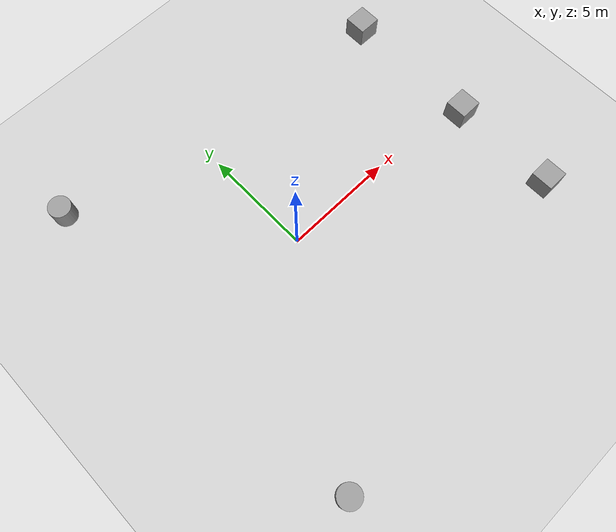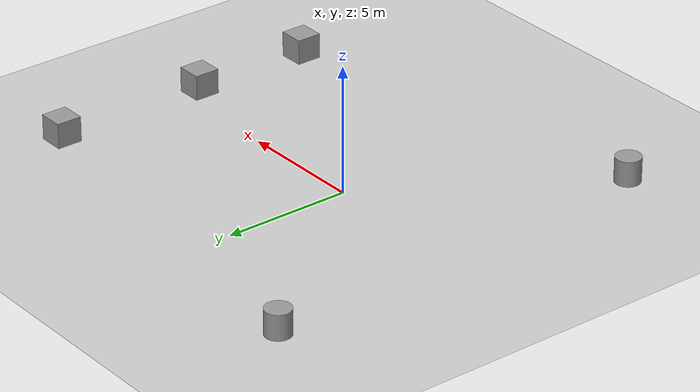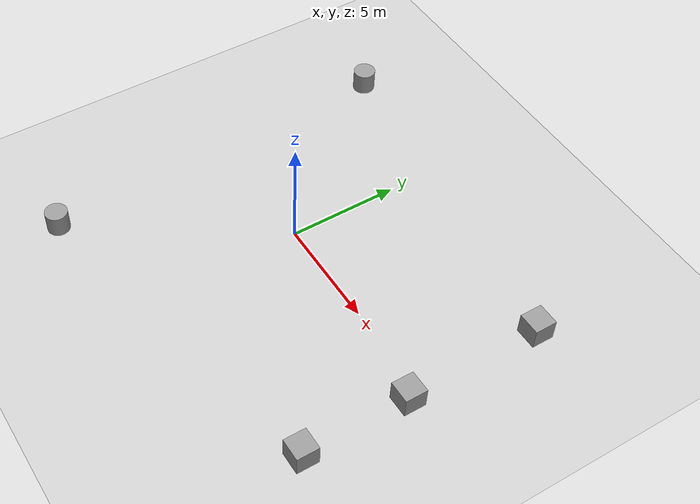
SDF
<sdf version="1.6">
 <world name="default">
  <light name="sun" type="directional">
   <pose>0 0 10 0 -0 0</pose>
   <diffuse>0.8 0.8 0.8 1</diffuse>
   <specular>0.1 0.1 0.1 1</specular>
   <attenuation>
    <range>1000</range>
    <constant>0.9</constant>
    <linear>0.01</linear>
    <quadratic>0.001</quadratic>
   </attenuation>
   <direction>-0.5 0.5 -1</direction>
  </light>
  <model name="ground_plane">
   <static>1</static>
   <link name="link">
    <collision name="collision">
     <geometry><plane><normal>0 0 1</normal><size>100 100</size></plane></geometry>
     <surface><friction><ode><mu>100</mu><mu2>50</mu2></ode></friction></surface>
    </collision>
    <visual name="visual">
     <cast_shadows>0</cast_shadows>
     <geometry><plane><normal>0 0 1</normal><size>100 100</size></plane></geometry>
     <material>
      <script><uri>file://media/materials/scripts/gazebo.material</uri><name>Gazebo/Grey</name></script>
     </material>
    </visual>
   </link>
  </model>
  <gravity>0 0 -9.8</gravity>
  <magnetic_field>6e-06 2.3e-05 -4.2e-05</magnetic_field>
  <atmosphere type="adiabatic"/>
  <physics name="default_physics" default="0" type="ode">
   <max_step_size>0.001</max_step_size>
   <real_time_factor>1</real_time_factor>
   <real_time_update_rate>1000</real_time_update_rate>
  </physics>
  <scene><ambient>0.4 0.4 0.4 1</ambient><background>0.7 0.7 0.7 1</background><shadows>1</shadows></scene>
  <spherical_coordinates>
   <surface_model>EARTH_WGS84</surface_model>
   <latitude_deg>0</latitude_deg>
   <longitude_deg>0</longitude_deg>
   <elevation>0</elevation>
   <heading_deg>0</heading_deg>
  </spherical_coordinates>
  <model name="unit_box">
   <pose>9.48877 5.53976 0.499995 1e-05 -0 0</pose>
   <link name="link">
    <inertial>
     <mass>1</mass>
     <inertia>
      <ixx>0.166667</ixx>
      <ixy>0</ixy>
      <ixz>0</ixz>
      <iyy>0.166667</iyy>
      <iyz>0</iyz>
      <izz>0.166667</izz>
     </inertia>
    </inertial>
    <collision name="collision"><geometry><box><size>1 1 1</size></box></geometry></collision>
    <visual name="visual">
     <geometry><box><size>1 1 1</size></box></geometry>
     <material>
      <script><name>Gazebo/Grey</name><uri>file://media/materials/scripts/gazebo.material</uri></script>
     </material>
    </visual>
   </link>
  </model>
  <model name="unit_box_0">
   <pose>9.48198 -0.657965 0.499995 -1e-05 0 0</pose>
   <link name="link">
    <inertial>
     <mass>1</mass>
     <inertia>
      <ixx>0.166667</ixx>
      <ixy>0</ixy>
      <ixz>0</ixz>
      <iyy>0.166667</iyy>
      <iyz>0</iyz>
      <izz>0.166667</izz>
     </inertia>
    </inertial>
    <collision name="collision"><geometry><box><size>1 1 1</size></box></geometry></collision>
    <visual name="visual">
     <geometry><box><size>1 1 1</size></box></geometry>
     <material>
      <script><name>Gazebo/Grey</name><uri>file://media/materials/scripts/gazebo.material</uri></script>
     </material>
    </visual>
   </link>
  </model>
  <model name="unit_box_1">
   <pose>9.48547 -5.46356 0.499995 1e-05 -0 0</pose>
   <link name="link">
    <inertial>
     <mass>1</mass>
     <inertia>
      <ixx>0.166667</ixx>
      <ixy>0</ixy>
      <ixz>0</ixz>
      <iyy>0.166667</iyy>
      <iyz>0</iyz>
      <izz>0.166667</izz>
     </inertia>
    </inertial>
    <collision name="collision"><geometry><box><size>1 1 1</size></box></geometry></collision>
    <visual name="visual">
     <geometry><box><size>1 1 1</size></box></geometry>
     <material>
      <script><name>Gazebo/Grey</name><uri>file://media/materials/scripts/gazebo.material</uri></script>
     </material>
    </visual>
   </link>
  </model>
  <model name="unit_cylinder">
   <pose>-5.5789 -8.53711 0.499992 -3e-06 -4e-06 -0</pose>
   <link name="link">
    <inertial>
     <mass>1</mass>
     <inertia><ixx>0.145833</ixx><ixy>0</ixy><ixz>0</ixz><iyy>0.145833</iyy><iyz>0</iyz><izz>0.125</izz></inertia>
    </inertial>
    <collision name="collision">
     <geometry><cylinder><radius>0.5</radius><length>1</length></cylinder></geometry>
    </collision>
    <visual name="visual">
     <geometry><cylinder><radius>0.5</radius><length>1</length></cylinder></geometry>
     <material>
      <script><name>Gazebo/Grey</name><uri>file://media/materials/scripts/gazebo.material</uri></script>
     </material>
    </visual>
   </link>
  </model>
  <model name="unit_cylinder_0">
   <pose>-6.27398 7.67123 0.499993 -3e-06 -3e-06 0</pose>
   <link name="link">
    <inertial>
     <mass>1</mass>
     <inertia><ixx>0.145833</ixx><ixy>0</ixy><ixz>0</ixz><iyy>0.145833</iyy><iyz>0</iyz><izz>0.125</izz></inertia>
    </inertial>
    <collision name="collision">
     <geometry><cylinder><radius>0.5</radius><length>1</length></cylinder></geometry>
    </collision>
    <visual name="visual">
     <geometry><cylinder><radius>0.5</radius><length>1</length></cylinder></geometry>
     <material>
      <script><name>Gazebo/Grey</name><uri>file://media/materials/scripts/gazebo.material</uri></script>
     </material>
    </visual>
   </link>
  </model>
 </world>
</sdf>
